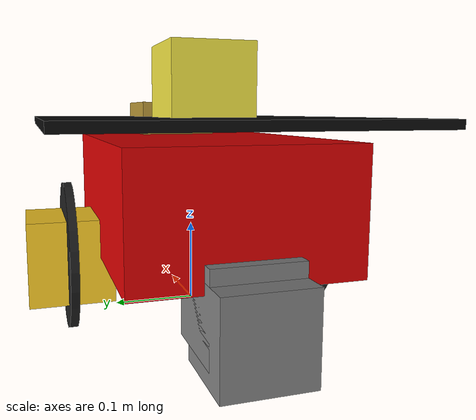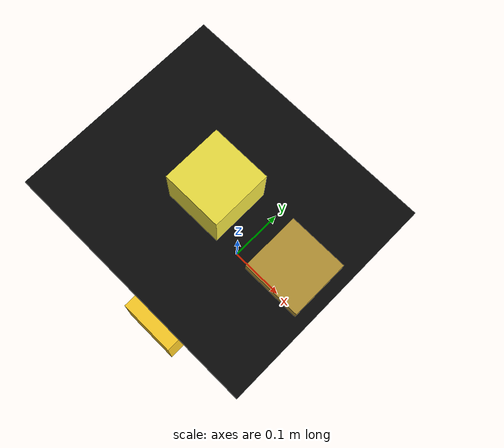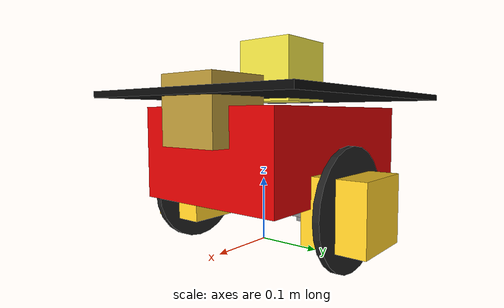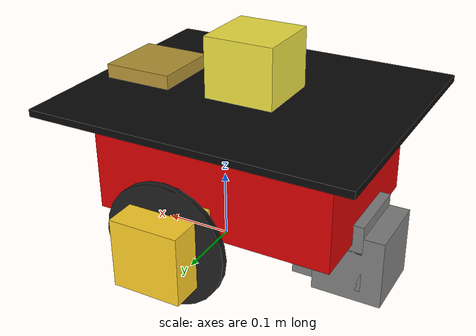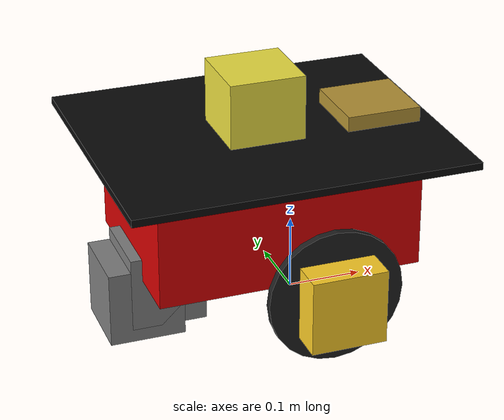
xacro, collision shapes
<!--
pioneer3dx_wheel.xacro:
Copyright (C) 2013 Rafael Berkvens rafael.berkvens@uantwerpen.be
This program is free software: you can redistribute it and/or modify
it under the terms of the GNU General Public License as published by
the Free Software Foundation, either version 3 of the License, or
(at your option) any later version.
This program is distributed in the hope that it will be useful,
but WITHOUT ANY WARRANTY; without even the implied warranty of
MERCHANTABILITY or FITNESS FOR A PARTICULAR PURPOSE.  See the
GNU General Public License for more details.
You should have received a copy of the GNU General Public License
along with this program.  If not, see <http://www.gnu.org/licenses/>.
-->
<?xml version="1.0"?>

<robot name="pioneer3dx" xmlns:xacro="http://ros.org/wiki/xacro">

  <!-- import all gazebo-customization elements, including gazebo colors -->
  <!-- import the pioneer 3dx's wheels -->
  <xacro:include filename="$(find p3dx_description)/urdf/pioneer3dx_wheel.xacro" />

  <!-- BASE-FOOTPRINT -->
    <!-- base_footprint is a fictitious link(frame) that is on the ground right below base_link origin -->
    <link name="base_footprint">
      <visual>
          <origin xyz="0 0 0" rpy="0 0 0" />
          <geometry>
              <box size="0.001 0.001 0.001" />
          </geometry>
      </visual>
    </link>

    <joint name="base_footprint_joint" type="fixed">
      <origin xyz="0 0 0" rpy="0 0 0" />
      <parent link="base_footprint"/>
      <child link="base_link" />
    </joint>

  <!-- chassis -->
	<link name="base_link">
		<inertial>
			<mass value="3.5" />
			<origin xyz="-0.05 0 0" />
			<inertia ixx="1" ixy="0" ixz="0" iyy="1" iyz="0" izz="1" />
		</inertial>

		<visual >
			<origin xyz="-0.045 0 0.148" rpy="0 0 0" />
			<geometry name="pioneer_geom">
				<mesh filename="package://p3dx_description/meshes/chassis.stl" />
			</geometry>
			<material name="ChassisRed">
				<color rgba="0.851 0.0 0.0 1.0" />
			</material>
		</visual>

		<collision>
			<origin xyz="-0.045 0 0.145" rpy="0 0 0" />
			<geometry>
				<box size="0.35 0.25 0.14" />
			</geometry>
		</collision>
	</link>

  <!-- top_plate -->
	<link name="top_plate">
		<inertial>
			<mass value="0.01" />
			<origin xyz="0 0 0" />
			<inertia ixx="1" ixy="0" ixz="0" iyy="1" iyz="0" izz="1" />
		</inertial>

		<visual >
			<origin xyz="0 0 0" rpy="0 0 0" />
			<geometry name="top_geom">
				<mesh filename="package://p3dx_description/meshes/top.stl" />
			</geometry>

			<material name="TopBlack">
				<color rgba="0.038 0.038 0.038 1.0" />
			</material>
		</visual>

		<collision>
			<origin xyz="0.0 0 0" rpy="0 0 0" />
			<geometry name="pioneer_geom">
				<box size="0.45 0.38 0.01" />
			</geometry>
		</collision>
	</link>

	<joint name="base_top_joint" type="fixed">
		<origin xyz="-0.045 0 0.234" rpy="0 0 0" />
		<parent link="base_link" />
		<child link="top_plate" />
	</joint>

  <!-- swivel -->
	<link name="swivel">
		<inertial>
			<mass value="0.1" />
			<origin xyz="0 0 0" />
			<inertia ixx="0.01" ixy="0" ixz="0" iyy="0.01" iyz="0" izz="0.01" />
		</inertial>

		<visual >
			<origin xyz="0 0 0" rpy="0 0 0" />
			<geometry name="pioneer_geom">
				<mesh filename="package://p3dx_description/meshes/swivel.stl" />
			</geometry>
			<material name="swivel">
				<color rgba="0.5 0.5 0.5 1" />
			</material>
		</visual>

		<collision>
			<origin xyz="0 0 0" rpy="0 0 0" />
			<geometry>
				<box size="0.1 0.1 0.1" />
			</geometry>
		</collision>
	</link>

	<joint name="base_swivel_joint" type="continuous">
		<origin xyz="-0.185 0 0.055" rpy="0 0 0" />
		<axis xyz="0 0 1" />
		<anchor xyz="0 0 0" />
		<limit effort="100" velocity="100" k_velocity="0" />
		<joint_properties damping="0.0" friction="0.0" />
		<parent link="base_link" />
		<child link="swivel" />
	</joint>

  <!-- center_hubcap -->
	<link name="center_hubcap">
		<inertial>
			<mass value="0.01" />
			<origin xyz="0 0 0" />
			<inertia ixx="0.012411765597" ixy="-0.000711733678" ixz="0.00050272983"
				iyy="0.015218160428" iyz="-0.000004273467" izz="0.011763977943" />
		</inertial>

		<visual >
			<origin xyz="0 0 0" rpy="0 0 0" />
			<geometry name="pioneer_geom">
				<mesh filename="package://p3dx_description/meshes/center_hubcap.stl" />
			</geometry>
			<material name="swivel">
				<color rgba="0.5 0.5 0.5 1" />
			</material>
		</visual>

		<collision>
			<origin xyz="0 0 0" rpy="0 0 0" />
			<geometry>
				<box size="0.1 0.1 0.1" />
			</geometry>
		</collision>
	</link>

	<joint name="swivel_hubcap_joint" type="continuous">
		<origin xyz="-0.026 0 -0.016" rpy="0 0 0" />
		<axis xyz="0 1 0" />
		<anchor xyz="0 0 0" />
		<limit effort="100" velocity="100" k_velocity="0" />
		<joint_properties damping="0.0" friction="0.0" />
		<parent link="swivel" />
		<child link="center_wheel" />
	</joint>

  <!-- center_wheel -->
	<link name="center_wheel">
		<inertial>
			<mass value="0.1" />
			<origin xyz="0 0 0" />
			<inertia ixx="0.012411765597" ixy="-0.000711733678" ixz="0.00050272983"
				iyy="0.015218160428" iyz="-0.000004273467" izz="0.011763977943" />
		</inertial>

		<visual >
			<origin xyz="0 0 0" rpy="0 0 0" />
			<geometry name="pioneer_geom">
				<mesh filename="package://p3dx_description/meshes/center_wheel.stl" />
			</geometry>
			<material name="WheelBlack">
				<color rgba="0.117 0.117 0.117 1" />
			</material>
		</visual>

		<collision>
			<origin xyz="0 0 0" rpy="${-3.1415927/2.0} 0 0" />
			<geometry>
				<cylinder radius="0.0375" length="0.01" />
			</geometry>
		</collision>
	</link>

	<joint name="center_wheel_joint" type="fixed">
		<origin xyz="-0.0035 0 -0.001" rpy="0 0 0"/>
		<parent link="center_wheel"/>
		<child link="center_hubcap"/>
	</joint>

	<xacro:p3dx_wheel suffix="left" parent="base_link" reflect="1"/>
	<xacro:p3dx_wheel suffix="right" parent="base_link" reflect="-1"/>

  <!-- front_sonar -->
	<link name="front_sonar">
		<inertial>
			<mass value="0.0001" />
			<origin xyz="0 0 0" />
			<inertia ixx="1" ixy="0" ixz="0" iyy="1" iyz="0" izz="1" />
		</inertial>

		<visual>
			<origin rpy="0 0 0" xyz="0 0 0" />
			<geometry name="pioneer_geom">
				<mesh filename="package://p3dx_description/meshes/front_sonar.stl" />
			</geometry>
			<material name="SonarYellow">
				<color rgba="0.715 0.583 0.210 1.0" />
			</material>
		</visual>

		<collision>
			<origin rpy="0 0 0" xyz="0 0 0" />
			<geometry>
				<box size="0.1 0.1 0.1" />
			</geometry>
		</collision>
	</link>

	<joint name="base_front_joint" type="fixed">
		<origin rpy="0 0 0" xyz="0.109 0 0.209" />
		<parent link="base_link" />
		<child link="front_sonar" />
	</joint>

	<!-- lms100 laser -->
	<link name="lms100">
		<inertial>
			<mass value="1e-5" />
			<origin xyz="0 0 0" rpy="0 0 0" />
			<inertia ixx="1e-6" ixy="0" ixz="0" iyy="1e-6" iyz="0" izz="1e-6" />
		</inertial>

		<visual>
			<origin xyz="0 0 0" rpy="0 0 0" />
			<geometry>
				<mesh filename="package://p3dx_description/meshes/lms100.dae" />
			</geometry>
		</visual>

		<collision>
			<origin xyz="0 0 0" rpy="0 0 0" />
			<geometry>
				<box size="0.1 0.1 0.1" />
			</geometry>
		</collision>
	</link>

	<joint name="lms100_joint" type="fixed">

		<origin xyz="${0.2 - 0.5/2} 0 ${0.15 +0.5/4}" rpy="0 0 0" />
		<parent link="base_link" />
		<child link="lms100" />
	</joint>

</robot>

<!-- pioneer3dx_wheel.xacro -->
<robot xmlns:xacro="http://ros.org/wiki/xacro">

	<!-- properties (constants) -->
	<property name="M_PI" value="3.14159" />

	<!-- right/left hubcap + wheel -->
	<xacro:macro name="p3dx_wheel" params="suffix parent reflect">

		<!-- wheel -->
		<link name="p3dx_${suffix}_wheel">
			<inertial>
				<mass value="0.5" />
				<origin xyz="0 0 0" />
				<inertia ixx="0.012411765597" ixy="0" ixz="0" iyy="0.015218160428"
					iyz="0" izz="0.011763977943" />
			</inertial>

			<visual>
				<origin xyz="0 0 0" rpy="0 0 0" />
				<geometry name="pioneer_geom">
					<mesh filename="package://p3dx_description/meshes/${suffix}_wheel.stl" />
				</geometry>
				<material name="WheelBlack">
					<color rgba="0.117 0.117 0.117 1" />
				</material>
			</visual>

			<collision>
				<origin xyz="0 0 0" rpy="${-3.1415927/2} 0 0" />
				<geometry>
					<cylinder radius="0.09" length="0.01" />
				</geometry>
			</collision>
		</link>

		<joint name="base_${suffix}_hubcap_joint" type="fixed">
			<origin xyz="0 0 0" rpy="0 0 0" />
			<parent link="p3dx_${suffix}_wheel" />
			<child link="p3dx_${suffix}_hubcap" />
		</joint>

		<!-- hubcap -->
		<link name="p3dx_${suffix}_hubcap">
			<inertial>
				<mass value="0.01" />
				<origin xyz="0 0 0" />
				<inertia ixx="0.012411765597" ixy="0" ixz="0" iyy="0.015218160428"
					iyz="0" izz="0.011763977943" />
			</inertial>

			<visual>
				<origin xyz="0 0 0" rpy="0 0 0" />
				<geometry name="pioneer_geom">
					<mesh filename="package://p3dx_description/meshes/${suffix}_hubcap.stl" />
				</geometry>

				<material name="HubcapYellow">
					<color rgba="1.0 0.811 0.151 1.0" />
				</material>
			</visual>

			<collision>
				<origin xyz="0 0 0" rpy="0 0 0" />
				<geometry>
					<box size="0.1 0.1 0.1" />
				</geometry>
			</collision>
		</link>

		<joint name="base_${suffix}_wheel_joint" type="continuous">
			<axis xyz="0 1 0" />
			<anchor xyz="0 0 0" />
			<limit effort="100" velocity="100" />
			<joint_properties damping="0.0" friction="0.0" />
			<origin xyz="0 ${reflect*0.158} 0.070" rpy="0 0 0" />
			<parent link="base_link" />
			<child link="p3dx_${suffix}_wheel" />
		</joint>

		<!-- gazebo elements -->

	</xacro:macro>

</robot>
